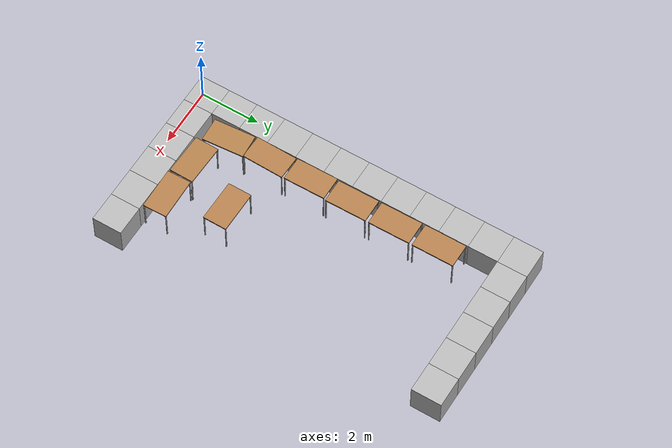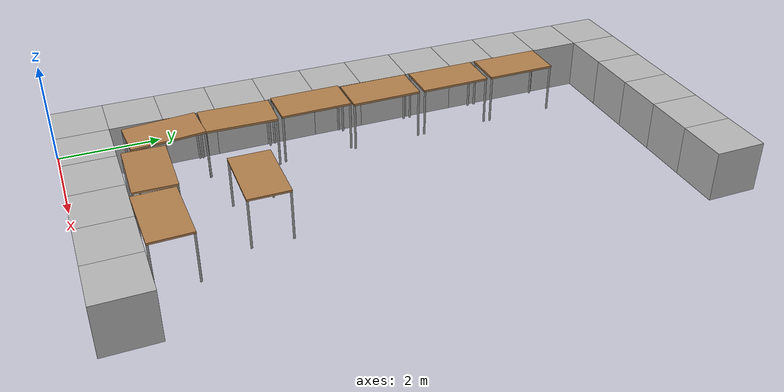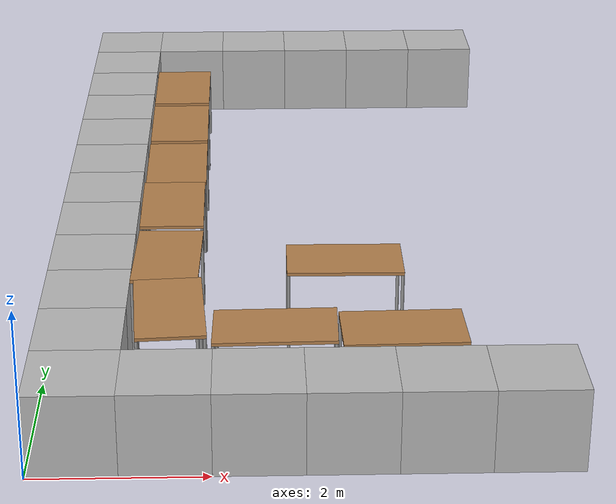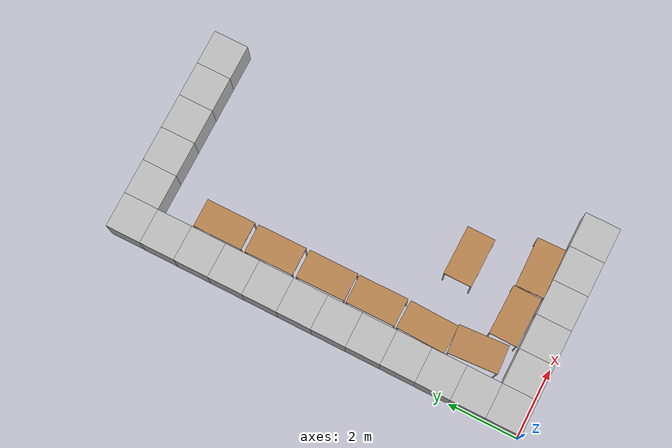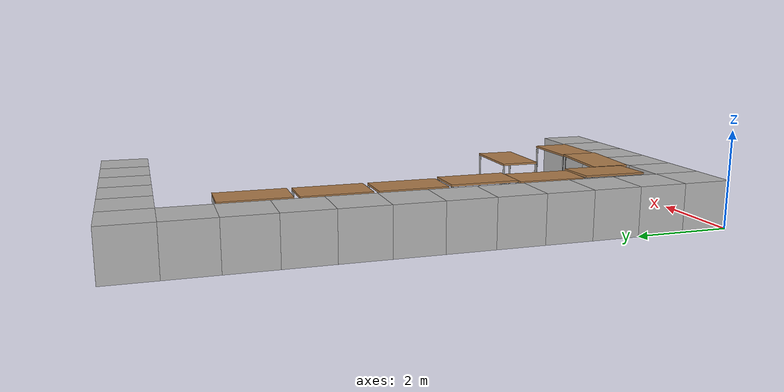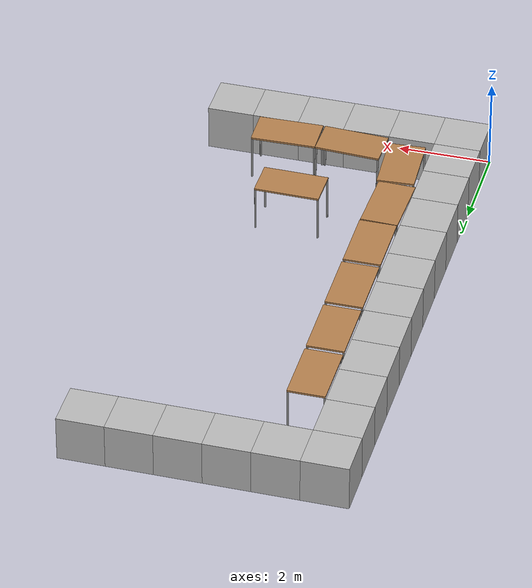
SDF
<sdf version="1.6">
 <world name="default">
  <model name="box_0_0">
   <pose>0.5 0.5 0.5 0 -0 0</pose>
   <static>1</static>
   <link name="link">
    <collision name="collision"><geometry><box><size>1 1 1</size></box></geometry></collision>
    <visual name="visual"><geometry><box><size>1 1 1</size></box></geometry></visual>
   </link>
  </model>
  <model name="box_0_1">
   <pose>0.5 1.5 0.5 0 -0 0</pose>
   <static>1</static>
   <link name="link">
    <collision name="collision"><geometry><box><size>1 1 1</size></box></geometry></collision>
    <visual name="visual"><geometry><box><size>1 1 1</size></box></geometry></visual>
   </link>
  </model>
  <model name="box_0_2">
   <pose>0.5 2.5 0.5 0 -0 0</pose>
   <static>1</static>
   <link name="link">
    <collision name="collision"><geometry><box><size>1 1 1</size></box></geometry></collision>
    <visual name="visual"><geometry><box><size>1 1 1</size></box></geometry></visual>
   </link>
  </model>
  <model name="box_0_3">
   <pose>0.5 3.5 0.5 0 -0 0</pose>
   <static>1</static>
   <link name="link">
    <collision name="collision"><geometry><box><size>1 1 1</size></box></geometry></collision>
    <visual name="visual"><geometry><box><size>1 1 1</size></box></geometry></visual>
   </link>
  </model>
  <model name="box_0_4">
   <pose>0.5 4.5 0.5 0 -0 0</pose>
   <static>1</static>
   <link name="link">
    <collision name="collision"><geometry><box><size>1 1 1</size></box></geometry></collision>
    <visual name="visual"><geometry><box><size>1 1 1</size></box></geometry></visual>
   </link>
  </model>
  <model name="box_0_5">
   <pose>0.5 5.5 0.5 0 -0 0</pose>
   <static>1</static>
   <link name="link">
    <collision name="collision"><geometry><box><size>1 1 1</size></box></geometry></collision>
    <visual name="visual"><geometry><box><size>1 1 1</size></box></geometry></visual>
   </link>
  </model>
  <model name="box_0_6">
   <pose>0.5 6.5 0.5 0 -0 0</pose>
   <static>1</static>
   <link name="link">
    <collision name="collision"><geometry><box><size>1 1 1</size></box></geometry></collision>
    <visual name="visual"><geometry><box><size>1 1 1</size></box></geometry></visual>
   </link>
  </model>
  <model name="box_0_7">
   <pose>0.5 7.5 0.5 0 -0 0</pose>
   <static>1</static>
   <link name="link">
    <collision name="collision"><geometry><box><size>1 1 1</size></box></geometry></collision>
    <visual name="visual"><geometry><box><size>1 1 1</size></box></geometry></visual>
   </link>
  </model>
  <model name="box_0_8">
   <pose>0.5 8.5 0.5 0 -0 0</pose>
   <static>1</static>
   <link name="link">
    <collision name="collision"><geometry><box><size>1 1 1</size></box></geometry></collision>
    <visual name="visual"><geometry><box><size>1 1 1</size></box></geometry></visual>
   </link>
  </model>
  <model name="box_0_9">
   <pose>0.5 9.5 0.5 0 -0 0</pose>
   <static>1</static>
   <link name="link">
    <collision name="collision"><geometry><box><size>1 1 1</size></box></geometry></collision>
    <visual name="visual"><geometry><box><size>1 1 1</size></box></geometry></visual>
   </link>
  </model>
  <model name="box_0_10">
   <pose>0.5 10.5 0.5 0 -0 0</pose>
   <static>1</static>
   <link name="link">
    <collision name="collision"><geometry><box><size>1 1 1</size></box></geometry></collision>
    <visual name="visual"><geometry><box><size>1 1 1</size></box></geometry></visual>
   </link>
  </model>
  <model name="box_0_11">
   <pose>0.5 11.5 0.5 0 -0 0</pose>
   <static>1</static>
   <link name="link">
    <collision name="collision"><geometry><box><size>1 1 1</size></box></geometry></collision>
    <visual name="visual"><geometry><box><size>1 1 1</size></box></geometry></visual>
   </link>
  </model>
  <model name="box_1_0">
   <pose>1.5 0.5 0.5 0 -0 0</pose>
   <static>1</static>
   <link name="link">
    <collision name="collision"><geometry><box><size>1 1 1</size></box></geometry></collision>
    <visual name="visual"><geometry><box><size>1 1 1</size></box></geometry></visual>
   </link>
  </model>
  <model name="box_1_11">
   <pose>1.5 11.5 0.5 0 -0 0</pose>
   <static>1</static>
   <link name="link">
    <collision name="collision"><geometry><box><size>1 1 1</size></box></geometry></collision>
    <visual name="visual"><geometry><box><size>1 1 1</size></box></geometry></visual>
   </link>
  </model>
  <model name="box_2_0">
   <pose>2.5 0.5 0.5 0 -0 0</pose>
   <static>1</static>
   <link name="link">
    <collision name="collision"><geometry><box><size>1 1 1</size></box></geometry></collision>
    <visual name="visual"><geometry><box><size>1 1 1</size></box></geometry></visual>
   </link>
  </model>
  <model name="box_2_11">
   <pose>2.5 11.5 0.5 0 -0 0</pose>
   <static>1</static>
   <link name="link">
    <collision name="collision"><geometry><box><size>1 1 1</size></box></geometry></collision>
    <visual name="visual"><geometry><box><size>1 1 1</size></box></geometry></visual>
   </link>
  </model>
  <model name="box_3_0">
   <pose>3.5 0.5 0.5 0 -0 0</pose>
   <static>1</static>
   <link name="link">
    <collision name="collision"><geometry><box><size>1 1 1</size></box></geometry></collision>
    <visual name="visual"><geometry><box><size>1 1 1</size></box></geometry></visual>
   </link>
  </model>
  <model name="box_3_11">
   <pose>3.5 11.5 0.5 0 -0 0</pose>
   <static>1</static>
   <link name="link">
    <collision name="collision"><geometry><box><size>1 1 1</size></box></geometry></collision>
    <visual name="visual"><geometry><box><size>1 1 1</size></box></geometry></visual>
   </link>
  </model>
  <model name="box_4_0">
   <pose>4.5 0.5 0.5 0 -0 0</pose>
   <static>1</static>
   <link name="link">
    <collision name="collision"><geometry><box><size>1 1 1</size></box></geometry></collision>
    <visual name="visual"><geometry><box><size>1 1 1</size></box></geometry></visual>
   </link>
  </model>
  <model name="box_4_11">
   <pose>4.5 11.5 0.5 0 -0 0</pose>
   <static>1</static>
   <link name="link">
    <collision name="collision"><geometry><box><size>1 1 1</size></box></geometry></collision>
    <visual name="visual"><geometry><box><size>1 1 1</size></box></geometry></visual>
   </link>
  </model>
  <model name="box_5_0">
   <pose>5.5 0.5 0.5 0 -0 0</pose>
   <static>1</static>
   <link name="link">
    <collision name="collision"><geometry><box><size>1 1 1</size></box></geometry></collision>
    <visual name="visual"><geometry><box><size>1 1 1</size></box></geometry></visual>
   </link>
  </model>
  <model name="box_5_11">
   <pose>5.5 11.5 0.5 0 -0 0</pose>
   <static>1</static>
   <link name="link">
    <collision name="collision"><geometry><box><size>1 1 1</size></box></geometry></collision>
    <visual name="visual"><geometry><box><size>1 1 1</size></box></geometry></visual>
   </link>
  </model>
  <model name="table_0_clone_clone_1">
   <static>0</static>
   <link name="link">
    <collision name="surface">
     <pose>0 0 1 0 -0 0</pose>
     <geometry><box><size>1.5 0.8 0.03</size></box></geometry>
     <surface><friction><ode><mu>0.6</mu><mu2>0.6</mu2></ode></friction></surface>
    </collision>
    <visual name="visual1">
     <pose>0 0 1 0 -0 0</pose>
     <geometry><box><size>1.4 0.8 0.04</size></box></geometry>
     <material>
      <script><uri>file://media/materials/scripts/gazebo.material</uri><name>Gazebo/Wood</name></script>
     </material>
    </visual>
    <collision name="front_left_leg">
     <pose>0.68 0.38 0.5 0 -0 0</pose>
     <geometry><cylinder><radius>0.02</radius><length>1</length></cylinder></geometry>
    </collision>
    <visual name="front_left_leg">
     <pose>0.68 0.38 0.5 0 -0 0</pose>
     <geometry><cylinder><radius>0.02</radius><length>1</length></cylinder></geometry>
     <material>
      <script><uri>file://media/materials/scripts/gazebo.material</uri><name>Gazebo/Grey</name></script>
     </material>
    </visual>
    <collision name="front_right_leg">
     <pose>0.68 -0.38 0.5 0 -0 0</pose>
     <geometry><cylinder><radius>0.02</radius><length>1</length></cylinder></geometry>
    </collision>
    <visual name="front_right_leg">
     <pose>0.68 -0.38 0.5 0 -0 0</pose>
     <geometry><cylinder><radius>0.02</radius><length>1</length></cylinder></geometry>
     <material>
      <script><uri>file://media/materials/scripts/gazebo.material</uri><name>Gazebo/Grey</name></script>
     </material>
    </visual>
    <collision name="back_right_leg">
     <pose>-0.68 -0.38 0.5 0 -0 0</pose>
     <geometry><cylinder><radius>0.02</radius><length>1</length></cylinder></geometry>
    </collision>
    <visual name="back_right_leg">
     <pose>-0.68 -0.38 0.5 0 -0 0</pose>
     <geometry><cylinder><radius>0.02</radius><length>1</length></cylinder></geometry>
     <material>
      <script><uri>file://media/materials/scripts/gazebo.material</uri><name>Gazebo/Grey</name></script>
     </material>
    </visual>
    <collision name="back_left_leg">
     <pose>-0.68 0.38 0.5 0 -0 0</pose>
     <geometry><cylinder><radius>0.02</radius><length>1</length></cylinder></geometry>
    </collision>
    <visual name="back_left_leg">
     <pose>-0.68 0.38 0.5 0 -0 0</pose>
     <geometry><cylinder><radius>0.02</radius><length>1</length></cylinder></geometry>
     <material>
      <script><uri>file://media/materials/scripts/gazebo.material</uri><name>Gazebo/Grey</name></script>
     </material>
    </visual>
    <inertial>
     <inertia><ixx>1</ixx><ixy>0</ixy><ixz>0</ixz><iyy>1</iyy><iyz>0</iyz><izz>1</izz></inertia>
     <mass>1</mass>
    </inertial>
   </link>
   <pose>1.49135 1.95173 0.015846 0.001998 0.021619 -1.50626</pose>
  </model>
  <model name="table_0_clone_clone_2">
   <static>0</static>
   <link name="link">
    <collision name="surface">
     <pose>0 0 1 0 -0 0</pose>
     <geometry><box><size>1.5 0.8 0.03</size></box></geometry>
     <surface><friction><ode><mu>0.6</mu><mu2>0.6</mu2></ode></friction></surface>
    </collision>
    <visual name="visual1">
     <pose>0 0 1 0 -0 0</pose>
     <geometry><box><size>1.4 0.8 0.04</size></box></geometry>
     <material>
      <script><uri>file://media/materials/scripts/gazebo.material</uri><name>Gazebo/Wood</name></script>
     </material>
    </visual>
    <collision name="front_left_leg">
     <pose>0.68 0.38 0.5 0 -0 0</pose>
     <geometry><cylinder><radius>0.02</radius><length>1</length></cylinder></geometry>
    </collision>
    <visual name="front_left_leg">
     <pose>0.68 0.38 0.5 0 -0 0</pose>
     <geometry><cylinder><radius>0.02</radius><length>1</length></cylinder></geometry>
     <material>
      <script><uri>file://media/materials/scripts/gazebo.material</uri><name>Gazebo/Grey</name></script>
     </material>
    </visual>
    <collision name="front_right_leg">
     <pose>0.68 -0.38 0.5 0 -0 0</pose>
     <geometry><cylinder><radius>0.02</radius><length>1</length></cylinder></geometry>
    </collision>
    <visual name="front_right_leg">
     <pose>0.68 -0.38 0.5 0 -0 0</pose>
     <geometry><cylinder><radius>0.02</radius><length>1</length></cylinder></geometry>
     <material>
      <script><uri>file://media/materials/scripts/gazebo.material</uri><name>Gazebo/Grey</name></script>
     </material>
    </visual>
    <collision name="back_right_leg">
     <pose>-0.68 -0.38 0.5 0 -0 0</pose>
     <geometry><cylinder><radius>0.02</radius><length>1</length></cylinder></geometry>
    </collision>
    <visual name="back_right_leg">
     <pose>-0.68 -0.38 0.5 0 -0 0</pose>
     <geometry><cylinder><radius>0.02</radius><length>1</length></cylinder></geometry>
     <material>
      <script><uri>file://media/materials/scripts/gazebo.material</uri><name>Gazebo/Grey</name></script>
     </material>
    </visual>
    <collision name="back_left_leg">
     <pose>-0.68 0.38 0.5 0 -0 0</pose>
     <geometry><cylinder><radius>0.02</radius><length>1</length></cylinder></geometry>
    </collision>
    <visual name="back_left_leg">
     <pose>-0.68 0.38 0.5 0 -0 0</pose>
     <geometry><cylinder><radius>0.02</radius><length>1</length></cylinder></geometry>
     <material>
      <script><uri>file://media/materials/scripts/gazebo.material</uri><name>Gazebo/Grey</name></script>
     </material>
    </visual>
    <inertial>
     <inertia><ixx>1</ixx><ixy>0</ixy><ixz>0</ixz><iyy>1</iyy><iyz>0</iyz><izz>1</izz></inertia>
     <mass>1</mass>
    </inertial>
   </link>
   <pose>1.42128 3.34513 -2.8e-05 -4e-06 -5e-06 -1.5994</pose>
  </model>
  <model name="table_0_clone_clone_2_clone">
   <static>0</static>
   <link name="link">
    <collision name="surface">
     <pose>0 0 1 0 -0 0</pose>
     <geometry><box><size>1.5 0.8 0.03</size></box></geometry>
     <surface><friction><ode><mu>0.6</mu><mu2>0.6</mu2></ode></friction></surface>
    </collision>
    <visual name="visual1">
     <pose>0 0 1 0 -0 0</pose>
     <geometry><box><size>1.4 0.8 0.04</size></box></geometry>
     <material>
      <script><uri>file://media/materials/scripts/gazebo.material</uri><name>Gazebo/Wood</name></script>
     </material>
    </visual>
    <collision name="front_left_leg">
     <pose>0.68 0.38 0.5 0 -0 0</pose>
     <geometry><cylinder><radius>0.02</radius><length>1</length></cylinder></geometry>
    </collision>
    <visual name="front_left_leg">
     <pose>0.68 0.38 0.5 0 -0 0</pose>
     <geometry><cylinder><radius>0.02</radius><length>1</length></cylinder></geometry>
     <material>
      <script><uri>file://media/materials/scripts/gazebo.material</uri><name>Gazebo/Grey</name></script>
     </material>
    </visual>
    <collision name="front_right_leg">
     <pose>0.68 -0.38 0.5 0 -0 0</pose>
     <geometry><cylinder><radius>0.02</radius><length>1</length></cylinder></geometry>
    </collision>
    <visual name="front_right_leg">
     <pose>0.68 -0.38 0.5 0 -0 0</pose>
     <geometry><cylinder><radius>0.02</radius><length>1</length></cylinder></geometry>
     <material>
      <script><uri>file://media/materials/scripts/gazebo.material</uri><name>Gazebo/Grey</name></script>
     </material>
    </visual>
    <collision name="back_right_leg">
     <pose>-0.68 -0.38 0.5 0 -0 0</pose>
     <geometry><cylinder><radius>0.02</radius><length>1</length></cylinder></geometry>
    </collision>
    <visual name="back_right_leg">
     <pose>-0.68 -0.38 0.5 0 -0 0</pose>
     <geometry><cylinder><radius>0.02</radius><length>1</length></cylinder></geometry>
     <material>
      <script><uri>file://media/materials/scripts/gazebo.material</uri><name>Gazebo/Grey</name></script>
     </material>
    </visual>
    <collision name="back_left_leg">
     <pose>-0.68 0.38 0.5 0 -0 0</pose>
     <geometry><cylinder><radius>0.02</radius><length>1</length></cylinder></geometry>
    </collision>
    <visual name="back_left_leg">
     <pose>-0.68 0.38 0.5 0 -0 0</pose>
     <geometry><cylinder><radius>0.02</radius><length>1</length></cylinder></geometry>
     <material>
      <script><uri>file://media/materials/scripts/gazebo.material</uri><name>Gazebo/Grey</name></script>
     </material>
    </visual>
    <inertial>
     <inertia><ixx>1</ixx><ixy>0</ixy><ixz>0</ixz><iyy>1</iyy><iyz>0</iyz><izz>1</izz></inertia>
     <mass>1</mass>
    </inertial>
   </link>
   <pose>1.43589 4.80794 0.030004 -1.8e-05 3.9e-05 -1.56525</pose>
  </model>
  <model name="table_0_clone_clone_2_clone_0">
   <static>0</static>
   <link name="link">
    <collision name="surface">
     <pose>0 0 1 0 -0 0</pose>
     <geometry><box><size>1.5 0.8 0.03</size></box></geometry>
     <surface><friction><ode><mu>0.6</mu><mu2>0.6</mu2></ode></friction></surface>
    </collision>
    <visual name="visual1">
     <pose>0 0 1 0 -0 0</pose>
     <geometry><box><size>1.4 0.8 0.04</size></box></geometry>
     <material>
      <script><uri>file://media/materials/scripts/gazebo.material</uri><name>Gazebo/Wood</name></script>
     </material>
    </visual>
    <collision name="front_left_leg">
     <pose>0.68 0.38 0.5 0 -0 0</pose>
     <geometry><cylinder><radius>0.02</radius><length>1</length></cylinder></geometry>
    </collision>
    <visual name="front_left_leg">
     <pose>0.68 0.38 0.5 0 -0 0</pose>
     <geometry><cylinder><radius>0.02</radius><length>1</length></cylinder></geometry>
     <material>
      <script><uri>file://media/materials/scripts/gazebo.material</uri><name>Gazebo/Grey</name></script>
     </material>
    </visual>
    <collision name="front_right_leg">
     <pose>0.68 -0.38 0.5 0 -0 0</pose>
     <geometry><cylinder><radius>0.02</radius><length>1</length></cylinder></geometry>
    </collision>
    <visual name="front_right_leg">
     <pose>0.68 -0.38 0.5 0 -0 0</pose>
     <geometry><cylinder><radius>0.02</radius><length>1</length></cylinder></geometry>
     <material>
      <script><uri>file://media/materials/scripts/gazebo.material</uri><name>Gazebo/Grey</name></script>
     </material>
    </visual>
    <collision name="back_right_leg">
     <pose>-0.68 -0.38 0.5 0 -0 0</pose>
     <geometry><cylinder><radius>0.02</radius><length>1</length></cylinder></geometry>
    </collision>
    <visual name="back_right_leg">
     <pose>-0.68 -0.38 0.5 0 -0 0</pose>
     <geometry><cylinder><radius>0.02</radius><length>1</length></cylinder></geometry>
     <material>
      <script><uri>file://media/materials/scripts/gazebo.material</uri><name>Gazebo/Grey</name></script>
     </material>
    </visual>
    <collision name="back_left_leg">
     <pose>-0.68 0.38 0.5 0 -0 0</pose>
     <geometry><cylinder><radius>0.02</radius><length>1</length></cylinder></geometry>
    </collision>
    <visual name="back_left_leg">
     <pose>-0.68 0.38 0.5 0 -0 0</pose>
     <geometry><cylinder><radius>0.02</radius><length>1</length></cylinder></geometry>
     <material>
      <script><uri>file://media/materials/scripts/gazebo.material</uri><name>Gazebo/Grey</name></script>
     </material>
    </visual>
    <inertial>
     <inertia><ixx>1</ixx><ixy>0</ixy><ixz>0</ixz><iyy>1</iyy><iyz>0</iyz><izz>1</izz></inertia>
     <mass>1</mass>
    </inertial>
   </link>
   <pose>1.44124 6.25824 -2e-06 0 3e-06 -1.56456</pose>
  </model>
  <model name="table_0_clone_clone_2_clone_1">
   <static>0</static>
   <link name="link">
    <collision name="surface">
     <pose>0 0 1 0 -0 0</pose>
     <geometry><box><size>1.5 0.8 0.03</size></box></geometry>
     <surface><friction><ode><mu>0.6</mu><mu2>0.6</mu2></ode></friction></surface>
    </collision>
    <visual name="visual1">
     <pose>0 0 1 0 -0 0</pose>
     <geometry><box><size>1.4 0.8 0.04</size></box></geometry>
     <material>
      <script><uri>file://media/materials/scripts/gazebo.material</uri><name>Gazebo/Wood</name></script>
     </material>
    </visual>
    <collision name="front_left_leg">
     <pose>0.68 0.38 0.5 0 -0 0</pose>
     <geometry><cylinder><radius>0.02</radius><length>1</length></cylinder></geometry>
    </collision>
    <visual name="front_left_leg">
     <pose>0.68 0.38 0.5 0 -0 0</pose>
     <geometry><cylinder><radius>0.02</radius><length>1</length></cylinder></geometry>
     <material>
      <script><uri>file://media/materials/scripts/gazebo.material</uri><name>Gazebo/Grey</name></script>
     </material>
    </visual>
    <collision name="front_right_leg">
     <pose>0.68 -0.38 0.5 0 -0 0</pose>
     <geometry><cylinder><radius>0.02</radius><length>1</length></cylinder></geometry>
    </collision>
    <visual name="front_right_leg">
     <pose>0.68 -0.38 0.5 0 -0 0</pose>
     <geometry><cylinder><radius>0.02</radius><length>1</length></cylinder></geometry>
     <material>
      <script><uri>file://media/materials/scripts/gazebo.material</uri><name>Gazebo/Grey</name></script>
     </material>
    </visual>
    <collision name="back_right_leg">
     <pose>-0.68 -0.38 0.5 0 -0 0</pose>
     <geometry><cylinder><radius>0.02</radius><length>1</length></cylinder></geometry>
    </collision>
    <visual name="back_right_leg">
     <pose>-0.68 -0.38 0.5 0 -0 0</pose>
     <geometry><cylinder><radius>0.02</radius><length>1</length></cylinder></geometry>
     <material>
      <script><uri>file://media/materials/scripts/gazebo.material</uri><name>Gazebo/Grey</name></script>
     </material>
    </visual>
    <collision name="back_left_leg">
     <pose>-0.68 0.38 0.5 0 -0 0</pose>
     <geometry><cylinder><radius>0.02</radius><length>1</length></cylinder></geometry>
    </collision>
    <visual name="back_left_leg">
     <pose>-0.68 0.38 0.5 0 -0 0</pose>
     <geometry><cylinder><radius>0.02</radius><length>1</length></cylinder></geometry>
     <material>
      <script><uri>file://media/materials/scripts/gazebo.material</uri><name>Gazebo/Grey</name></script>
     </material>
    </visual>
    <inertial>
     <inertia><ixx>1</ixx><ixy>0</ixy><ixz>0</ixz><iyy>1</iyy><iyz>0</iyz><izz>1</izz></inertia>
     <mass>1</mass>
    </inertial>
   </link>
   <pose>1.43301 7.75822 -0.000813 0 0 -1.56456</pose>
  </model>
  <model name="table_0_clone_clone_2_clone_1_clone">
   <static>0</static>
   <link name="link">
    <collision name="surface">
     <pose>0 0 1 0 -0 0</pose>
     <geometry><box><size>1.5 0.8 0.03</size></box></geometry>
     <surface><friction><ode><mu>0.6</mu><mu2>0.6</mu2></ode></friction></surface>
    </collision>
    <visual name="visual1">
     <pose>0 0 1 0 -0 0</pose>
     <geometry><box><size>1.4 0.8 0.04</size></box></geometry>
     <material>
      <script><uri>file://media/materials/scripts/gazebo.material</uri><name>Gazebo/Wood</name></script>
     </material>
    </visual>
    <collision name="front_left_leg">
     <pose>0.68 0.38 0.5 0 -0 0</pose>
     <geometry><cylinder><radius>0.02</radius><length>1</length></cylinder></geometry>
    </collision>
    <visual name="front_left_leg">
     <pose>0.68 0.38 0.5 0 -0 0</pose>
     <geometry><cylinder><radius>0.02</radius><length>1</length></cylinder></geometry>
     <material>
      <script><uri>file://media/materials/scripts/gazebo.material</uri><name>Gazebo/Grey</name></script>
     </material>
    </visual>
    <collision name="front_right_leg">
     <pose>0.68 -0.38 0.5 0 -0 0</pose>
     <geometry><cylinder><radius>0.02</radius><length>1</length></cylinder></geometry>
    </collision>
    <visual name="front_right_leg">
     <pose>0.68 -0.38 0.5 0 -0 0</pose>
     <geometry><cylinder><radius>0.02</radius><length>1</length></cylinder></geometry>
     <material>
      <script><uri>file://media/materials/scripts/gazebo.material</uri><name>Gazebo/Grey</name></script>
     </material>
    </visual>
    <collision name="back_right_leg">
     <pose>-0.68 -0.38 0.5 0 -0 0</pose>
     <geometry><cylinder><radius>0.02</radius><length>1</length></cylinder></geometry>
    </collision>
    <visual name="back_right_leg">
     <pose>-0.68 -0.38 0.5 0 -0 0</pose>
     <geometry><cylinder><radius>0.02</radius><length>1</length></cylinder></geometry>
     <material>
      <script><uri>file://media/materials/scripts/gazebo.material</uri><name>Gazebo/Grey</name></script>
     </material>
    </visual>
    <collision name="back_left_leg">
     <pose>-0.68 0.38 0.5 0 -0 0</pose>
     <geometry><cylinder><radius>0.02</radius><length>1</length></cylinder></geometry>
    </collision>
    <visual name="back_left_leg">
     <pose>-0.68 0.38 0.5 0 -0 0</pose>
     <geometry><cylinder><radius>0.02</radius><length>1</length></cylinder></geometry>
     <material>
      <script><uri>file://media/materials/scripts/gazebo.material</uri><name>Gazebo/Grey</name></script>
     </material>
    </visual>
    <inertial>
     <inertia><ixx>1</ixx><ixy>0</ixy><ixz>0</ixz><iyy>1</iyy><iyz>0</iyz><izz>1</izz></inertia>
     <mass>1</mass>
    </inertial>
   </link>
   <pose>1.42688 9.26004 -1e-06 0 0 -1.56917</pose>
  </model>
  <model name="table_clone_0_clone">
   <static>0</static>
   <link name="link">
    <collision name="surface">
     <pose>0 0 1 0 -0 0</pose>
     <geometry><box><size>1.5 0.8 0.03</size></box></geometry>
     <surface><friction><ode><mu>0.6</mu><mu2>0.6</mu2></ode></friction></surface>
    </collision>
    <visual name="visual1">
     <pose>0 0 1 0 -0 0</pose>
     <geometry><box><size>1.4 0.8 0.04</size></box></geometry>
     <material>
      <script><uri>file://media/materials/scripts/gazebo.material</uri><name>Gazebo/Wood</name></script>
     </material>
    </visual>
    <collision name="front_left_leg">
     <pose>0.68 0.38 0.5 0 -0 0</pose>
     <geometry><cylinder><radius>0.02</radius><length>1</length></cylinder></geometry>
    </collision>
    <visual name="front_left_leg">
     <pose>0.68 0.38 0.5 0 -0 0</pose>
     <geometry><cylinder><radius>0.02</radius><length>1</length></cylinder></geometry>
     <material>
      <script><uri>file://media/materials/scripts/gazebo.material</uri><name>Gazebo/Grey</name></script>
     </material>
    </visual>
    <collision name="front_right_leg">
     <pose>0.68 -0.38 0.5 0 -0 0</pose>
     <geometry><cylinder><radius>0.02</radius><length>1</length></cylinder></geometry>
    </collision>
    <visual name="front_right_leg">
     <pose>0.68 -0.38 0.5 0 -0 0</pose>
     <geometry><cylinder><radius>0.02</radius><length>1</length></cylinder></geometry>
     <material>
      <script><uri>file://media/materials/scripts/gazebo.material</uri><name>Gazebo/Grey</name></script>
     </material>
    </visual>
    <collision name="back_right_leg">
     <pose>-0.68 -0.38 0.5 0 -0 0</pose>
     <geometry><cylinder><radius>0.02</radius><length>1</length></cylinder></geometry>
    </collision>
    <visual name="back_right_leg">
     <pose>-0.68 -0.38 0.5 0 -0 0</pose>
     <geometry><cylinder><radius>0.02</radius><length>1</length></cylinder></geometry>
     <material>
      <script><uri>file://media/materials/scripts/gazebo.material</uri><name>Gazebo/Grey</name></script>
     </material>
    </visual>
    <collision name="back_left_leg">
     <pose>-0.68 0.38 0.5 0 -0 0</pose>
     <geometry><cylinder><radius>0.02</radius><length>1</length></cylinder></geometry>
    </collision>
    <visual name="back_left_leg">
     <pose>-0.68 0.38 0.5 0 -0 0</pose>
     <geometry><cylinder><radius>0.02</radius><length>1</length></cylinder></geometry>
     <material>
      <script><uri>file://media/materials/scripts/gazebo.material</uri><name>Gazebo/Grey</name></script>
     </material>
    </visual>
    <inertial>
     <inertia><ixx>1</ixx><ixy>0</ixy><ixz>0</ixz><iyy>1</iyy><iyz>0</iyz><izz>1</izz></inertia>
     <mass>1</mass>
    </inertial>
   </link>
   <pose>3.55881 3.19191 -7e-06 0 0 -0.007666</pose>
  </model>
  <model name="table_clone_0_clone_clone">
   <static>0</static>
   <link name="link">
    <collision name="surface">
     <pose>0 0 1 0 -0 0</pose>
     <geometry><box><size>1.5 0.8 0.03</size></box></geometry>
     <surface><friction><ode><mu>0.6</mu><mu2>0.6</mu2></ode></friction></surface>
    </collision>
    <visual name="visual1">
     <pose>0 0 1 0 -0 0</pose>
     <geometry><box><size>1.4 0.8 0.04</size></box></geometry>
     <material>
      <script><uri>file://media/materials/scripts/gazebo.material</uri><name>Gazebo/Wood</name></script>
     </material>
    </visual>
    <collision name="front_left_leg">
     <pose>0.68 0.38 0.5 0 -0 0</pose>
     <geometry><cylinder><radius>0.02</radius><length>1</length></cylinder></geometry>
    </collision>
    <visual name="front_left_leg">
     <pose>0.68 0.38 0.5 0 -0 0</pose>
     <geometry><cylinder><radius>0.02</radius><length>1</length></cylinder></geometry>
     <material>
      <script><uri>file://media/materials/scripts/gazebo.material</uri><name>Gazebo/Grey</name></script>
     </material>
    </visual>
    <collision name="front_right_leg">
     <pose>0.68 -0.38 0.5 0 -0 0</pose>
     <geometry><cylinder><radius>0.02</radius><length>1</length></cylinder></geometry>
    </collision>
    <visual name="front_right_leg">
     <pose>0.68 -0.38 0.5 0 -0 0</pose>
     <geometry><cylinder><radius>0.02</radius><length>1</length></cylinder></geometry>
     <material>
      <script><uri>file://media/materials/scripts/gazebo.material</uri><name>Gazebo/Grey</name></script>
     </material>
    </visual>
    <collision name="back_right_leg">
     <pose>-0.68 -0.38 0.5 0 -0 0</pose>
     <geometry><cylinder><radius>0.02</radius><length>1</length></cylinder></geometry>
    </collision>
    <visual name="back_right_leg">
     <pose>-0.68 -0.38 0.5 0 -0 0</pose>
     <geometry><cylinder><radius>0.02</radius><length>1</length></cylinder></geometry>
     <material>
      <script><uri>file://media/materials/scripts/gazebo.material</uri><name>Gazebo/Grey</name></script>
     </material>
    </visual>
    <collision name="back_left_leg">
     <pose>-0.68 0.38 0.5 0 -0 0</pose>
     <geometry><cylinder><radius>0.02</radius><length>1</length></cylinder></geometry>
    </collision>
    <visual name="back_left_leg">
     <pose>-0.68 0.38 0.5 0 -0 0</pose>
     <geometry><cylinder><radius>0.02</radius><length>1</length></cylinder></geometry>
     <material>
      <script><uri>file://media/materials/scripts/gazebo.material</uri><name>Gazebo/Grey</name></script>
     </material>
    </visual>
    <inertial>
     <inertia><ixx>1</ixx><ixy>0</ixy><ixz>0</ixz><iyy>1</iyy><iyz>0</iyz><izz>1</izz></inertia>
     <mass>1</mass>
    </inertial>
   </link>
   <pose>2.7158 1.45869 0.015474 5.4e-05 -0.022078 -0.020561</pose>
  </model>
  <model name="table_clone_0_clone_clone_0">
   <static>0</static>
   <link name="link">
    <collision name="surface">
     <pose>0 0 1 0 -0 0</pose>
     <geometry><box><size>1.5 0.8 0.03</size></box></geometry>
     <surface><friction><ode><mu>0.6</mu><mu2>0.6</mu2></ode></friction></surface>
    </collision>
    <visual name="visual1">
     <pose>0 0 1 0 -0 0</pose>
     <geometry><box><size>1.4 0.8 0.04</size></box></geometry>
     <material>
      <script><uri>file://media/materials/scripts/gazebo.material</uri><name>Gazebo/Wood</name></script>
     </material>
    </visual>
    <collision name="front_left_leg">
     <pose>0.68 0.38 0.5 0 -0 0</pose>
     <geometry><cylinder><radius>0.02</radius><length>1</length></cylinder></geometry>
    </collision>
    <visual name="front_left_leg">
     <pose>0.68 0.38 0.5 0 -0 0</pose>
     <geometry><cylinder><radius>0.02</radius><length>1</length></cylinder></geometry>
     <material>
      <script><uri>file://media/materials/scripts/gazebo.material</uri><name>Gazebo/Grey</name></script>
     </material>
    </visual>
    <collision name="front_right_leg">
     <pose>0.68 -0.38 0.5 0 -0 0</pose>
     <geometry><cylinder><radius>0.02</radius><length>1</length></cylinder></geometry>
    </collision>
    <visual name="front_right_leg">
     <pose>0.68 -0.38 0.5 0 -0 0</pose>
     <geometry><cylinder><radius>0.02</radius><length>1</length></cylinder></geometry>
     <material>
      <script><uri>file://media/materials/scripts/gazebo.material</uri><name>Gazebo/Grey</name></script>
     </material>
    </visual>
    <collision name="back_right_leg">
     <pose>-0.68 -0.38 0.5 0 -0 0</pose>
     <geometry><cylinder><radius>0.02</radius><length>1</length></cylinder></geometry>
    </collision>
    <visual name="back_right_leg">
     <pose>-0.68 -0.38 0.5 0 -0 0</pose>
     <geometry><cylinder><radius>0.02</radius><length>1</length></cylinder></geometry>
     <material>
      <script><uri>file://media/materials/scripts/gazebo.material</uri><name>Gazebo/Grey</name></script>
     </material>
    </visual>
    <collision name="back_left_leg">
     <pose>-0.68 0.38 0.5 0 -0 0</pose>
     <geometry><cylinder><radius>0.02</radius><length>1</length></cylinder></geometry>
    </collision>
    <visual name="back_left_leg">
     <pose>-0.68 0.38 0.5 0 -0 0</pose>
     <geometry><cylinder><radius>0.02</radius><length>1</length></cylinder></geometry>
     <material>
      <script><uri>file://media/materials/scripts/gazebo.material</uri><name>Gazebo/Grey</name></script>
     </material>
    </visual>
    <inertial>
     <inertia><ixx>1</ixx><ixy>0</ixy><ixz>0</ixz><iyy>1</iyy><iyz>0</iyz><izz>1</izz></inertia>
     <mass>1</mass>
    </inertial>
   </link>
   <pose>4.1284 1.41781 1.5e-05 -2.1e-05 -1e-05 0.023927</pose>
  </model>
 </world>
</sdf>
